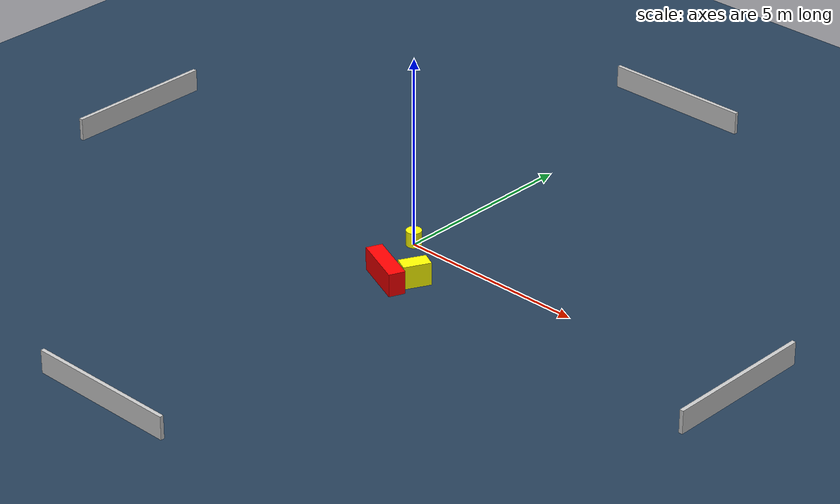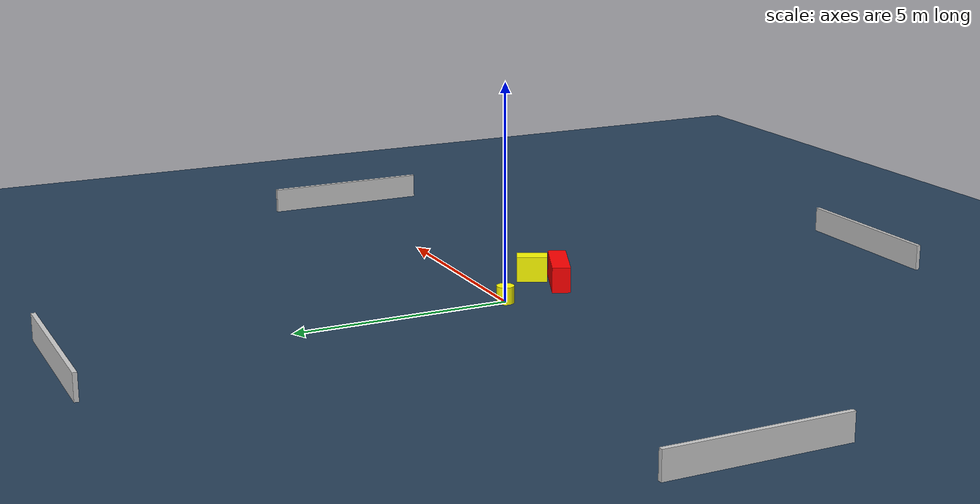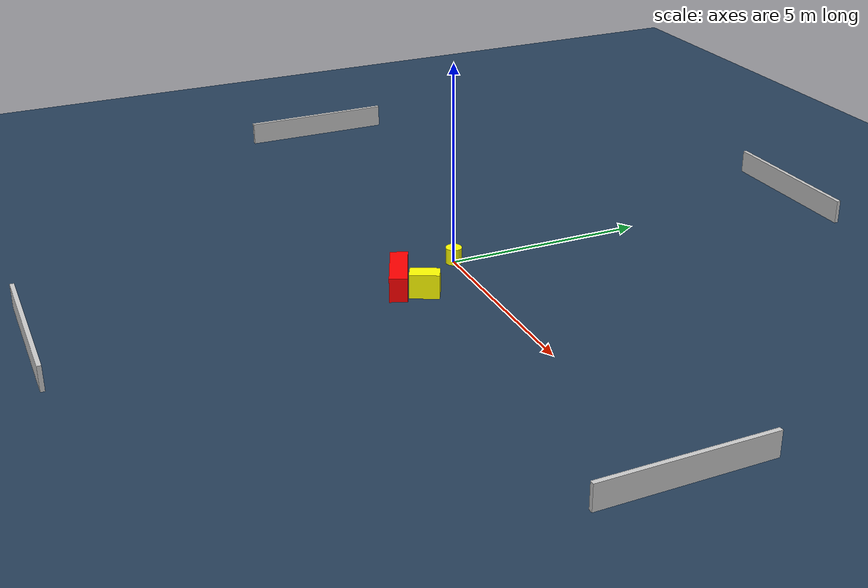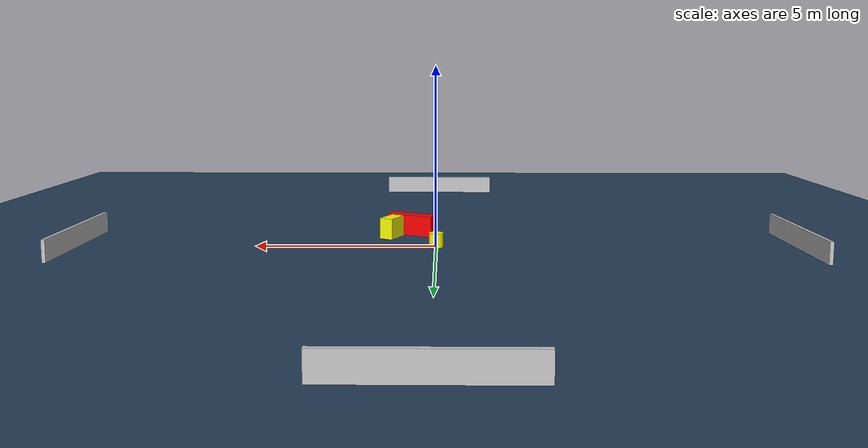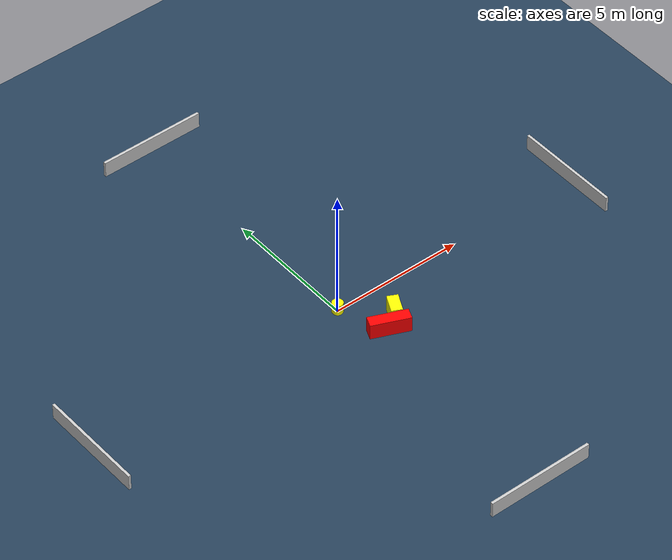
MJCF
<?xml version="1.0" ?>
<mujoco model="generated_environment">
  <option timestep="0.01" integrator="RK4" cone="elliptic"/>
  <default>
    <geom density="1"/>
  </default>
  <asset>
    <texture builtin="gradient" height="3072" name="skybox" rgb1="0.3 0.5 0.7" rgb2="0 0 0" type="skybox" width="512"/>
    <texture builtin="checker" height="300" name="groundplane" rgb1="0.2 0.3 0.4" rgb2="0.1 0.2 0.3" type="2d" width="300"/>
    <material name="groundplane" reflectance="0.2" texrepeat="5 5" texture="groundplane"/>
  </asset>
  <worldbody>
    <light dir="0 0 -1" directional="true" pos="0 0 1.5"/>
    <geom condim="3" friction="0.5 0.005 0.001" material="groundplane" name="floor" pos="0 0 0" size="0 0 0.05" type="plane"/>
    <body name="walls">
      <geom name="wall_1" condim="4" pos="-10.0 0.0 0.3" rgba="0.800000011920929 0.800000011920929 0.800000011920929 1.0" size="0.05 2.0 0.3" type="box"/>
      <geom name="wall_2" condim="4" pos="10.0 0.0 0.3" rgba="0.800000011920929 0.800000011920929 0.800000011920929 1.0" size="0.05 2.0 0.3" type="box"/>
      <geom name="wall_3" condim="4" pos="0.0 -10.0 0.3" rgba="0.800000011920929 0.800000011920929 0.800000011920929 1.0" size="2.0 0.05 0.3" type="box"/>
      <geom name="wall_4" condim="4" pos="0.0 10.0 0.3" rgba="0.800000011920929 0.800000011920929 0.800000011920929 1.0" size="2.0 0.05 0.3" type="box"/>
    </body>
    <body name="robot">
      <joint name="joint_x" type="slide" pos="0 0 0" axis="1 0 0"/>
      <joint name="joint_y" type="slide" pos="0 0 0" axis="0 1 0"/>
      <geom name="robot" type="cylinder" pos="0.0 0.0 0.2" size="0.2 0.2 0.0" mass="5.0" friction="1.0 0.005 0.0001" condim="4" rgba="1.0 1.0 0.0 1.0"/>
    </body>
    <body name="obstacle_1_movable">
      <geom name="obstacle_1_movable" condim="4" pos="1.3061054775067527 -1.3332007274061437 0.3" euler="0 0 62.965177584273675" friction="0.0 0.005 0.001" rgba="1.0 1.0 0.0 1.0" size="0.3545570281434661 0.20086234037596282 0.3" type="box" mass="0.1"/>
      <joint type="free"/>
    </body>
    <body name="obstacle_2_static">
      <geom name="obstacle_2_static" condim="4" pos="0.7392878305351397 -1.7459285542967673 0.3" euler="0 0 66.77002341335475" friction="0.0 0.005 0.001" rgba="1.0 0.0 0.0 1.0" size="0.21221603501420738 0.7148584617725608 0.3" type="box"/>
    </body>
  </worldbody>
  <actuator>
    <motor name="actuator_x" joint="joint_x" gear="1" ctrlrange="-1 1"/>
    <motor name="actuator_y" joint="joint_y" gear="1" ctrlrange="-1 1"/>
  </actuator>
</mujoco>
